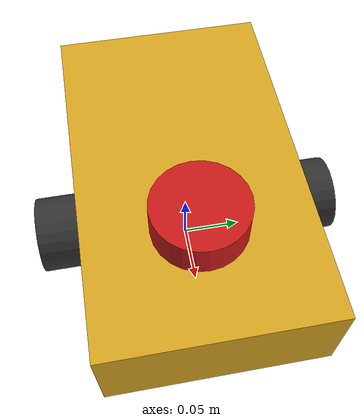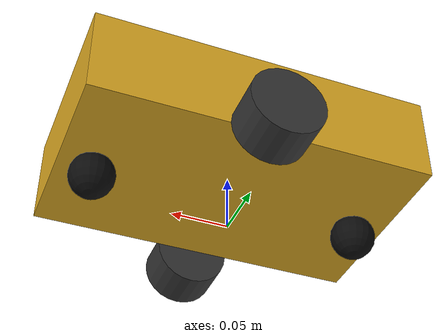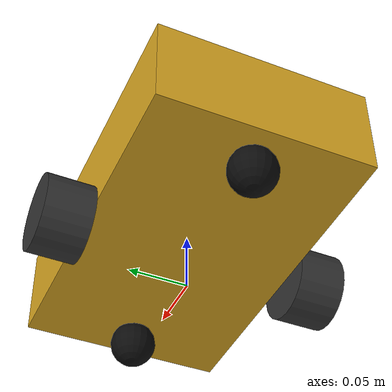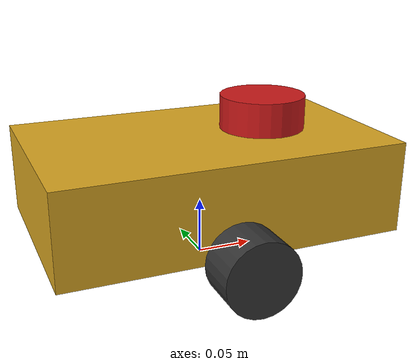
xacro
<?xml version="1.0"?>
<robot xmlns:xacro="http://www.ros.org/wiki/xacro" name="yp100_tank">

  <!-- Core Physical & Kinematic Model -->
  <xacro:include filename="yp100_core.xacro"/>

  <!-- Gazebo Differential Drive Plugin -->
  <xacro:include filename="gazebo_control.xacro"/>

  <!-- RPLIDAR A2M12 Laser Scanner -->
  <xacro:include filename="lidar.xacro"/>

  <!-- 6-DOF IMU Sensor -->
  <xacro:include filename="imu.xacro"/>

</robot>

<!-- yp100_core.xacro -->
<robot xmlns:xacro="http://www.ros.org/wiki/xacro">

  <!-- Dimensions and Properties for YP100 Tank Chassis -->
  <xacro:property name="chassis_length" value="0.300"/>
  <xacro:property name="chassis_width" value="0.180"/>
  <xacro:property name="chassis_height" value="0.080"/>
  <xacro:property name="chassis_mass" value="2.0"/>

  <xacro:property name="wheel_radius" value="0.0325"/>
  <xacro:property name="wheel_width" value="0.040"/>
  <xacro:property name="wheel_mass" value="0.2"/>
  <xacro:property name="wheel_separation" value="0.220"/>

  <xacro:property name="caster_radius" value="0.020"/>
  <xacro:property name="caster_mass" value="0.1"/>

  <!-- Colors -->
  <material name="yp100_gold">
    <color rgba="0.85 0.65 0.13 1.0"/>
  </material>

  <material name="dark_grey">
    <color rgba="0.2 0.2 0.2 1.0"/>
  </material>

  <material name="black">
    <color rgba="0.05 0.05 0.05 1.0"/>
  </material>

  <material name="red">
    <color rgba="0.8 0.1 0.1 1.0"/>
  </material>

  <!-- Base Footprint (Ground Projection) -->
  <link name="base_footprint"/>

  <!-- Base Joint -->
  <joint name="base_joint" type="fixed">
    <parent link="base_footprint"/>
    <child link="base_link"/>
    <origin xyz="0 0 ${wheel_radius}" rpy="0 0 0"/>
  </joint>

  <!-- Base Link (Chassis) -->
  <link name="base_link">
    <visual>
      <origin xyz="0 0 ${chassis_height/2}" rpy="0 0 0"/>
      <geometry>
        <box size="${chassis_length} ${chassis_width} ${chassis_height}"/>
      </geometry>
      <material name="yp100_gold"/>
    </visual>
    <collision>
      <origin xyz="0 0 ${chassis_height/2}" rpy="0 0 0"/>
      <geometry>
        <box size="${chassis_length} ${chassis_width} ${chassis_height}"/>
      </geometry>
    </collision>
    <inertial>
      <origin xyz="0 0 ${chassis_height/2}" rpy="0 0 0"/>
      <mass value="${chassis_mass}"/>
      <inertia
        ixx="${(1/12) * chassis_mass * (chassis_width*chassis_width + chassis_height*chassis_height)}"
        ixy="0.0"
        ixz="0.0"
        iyy="${(1/12) * chassis_mass * (chassis_length*chassis_length + chassis_height*chassis_height)}"
        iyz="0.0"
        izz="${(1/12) * chassis_mass * (chassis_length*chassis_length + chassis_width*chassis_width)}"/>
    </inertial>
  </link>

  <gazebo reference="base_link">
    <material>Gazebo/Gold</material>
  </gazebo>

  <!-- Left Drive Wheel -->
  <joint name="left_wheel_joint" type="continuous">
    <parent link="base_link"/>
    <child link="left_wheel"/>
    <origin xyz="0 ${wheel_separation/2} 0" rpy="-${pi/2} 0 0"/>
    <axis xyz="0 0 1"/>
  </joint>

  <link name="left_wheel">
    <visual>
      <geometry>
        <cylinder radius="${wheel_radius}" length="${wheel_width}"/>
      </geometry>
      <material name="dark_grey"/>
    </visual>
    <collision>
      <geometry>
        <cylinder radius="${wheel_radius}" length="${wheel_width}"/>
      </geometry>
    </collision>
    <inertial>
      <mass value="${wheel_mass}"/>
      <inertia
        ixx="${(1/12) * wheel_mass * (3*wheel_radius*wheel_radius + wheel_width*wheel_width)}"
        ixy="0.0"
        ixz="0.0"
        iyy="${(1/12) * wheel_mass * (3*wheel_radius*wheel_radius + wheel_width*wheel_width)}"
        iyz="0.0"
        izz="${(1/2) * wheel_mass * wheel_radius * wheel_radius}"/>
    </inertial>
  </link>

  <gazebo reference="left_wheel">
    <material>Gazebo/DarkGrey</material>
    <mu1 value="1.0"/>
    <mu2 value="1.0"/>
    <kp value="1000000.0"/>
    <kd value="100.0"/>
  </gazebo>

  <!-- Right Drive Wheel -->
  <joint name="right_wheel_joint" type="continuous">
    <parent link="base_link"/>
    <child link="right_wheel"/>
    <origin xyz="0 -${wheel_separation/2} 0" rpy="${pi/2} 0 0"/>
    <axis xyz="0 0 -1"/>
  </joint>

  <link name="right_wheel">
    <visual>
      <geometry>
        <cylinder radius="${wheel_radius}" length="${wheel_width}"/>
      </geometry>
      <material name="dark_grey"/>
    </visual>
    <collision>
      <geometry>
        <cylinder radius="${wheel_radius}" length="${wheel_width}"/>
      </geometry>
    </collision>
    <inertial>
      <mass value="${wheel_mass}"/>
      <inertia
        ixx="${(1/12) * wheel_mass * (3*wheel_radius*wheel_radius + wheel_width*wheel_width)}"
        ixy="0.0"
        ixz="0.0"
        iyy="${(1/12) * wheel_mass * (3*wheel_radius*wheel_radius + wheel_width*wheel_width)}"
        iyz="0.0"
        izz="${(1/2) * wheel_mass * wheel_radius * wheel_radius}"/>
    </inertial>
  </link>

  <gazebo reference="right_wheel">
    <material>Gazebo/DarkGrey</material>
    <mu1 value="1.0"/>
    <mu2 value="1.0"/>
    <kp value="1000000.0"/>
    <kd value="100.0"/>
  </gazebo>

  <!-- Front Support/Caster Wheel (Frictionless for pitch stability in Gazebo) -->
  <joint name="front_caster_joint" type="fixed">
    <parent link="base_link"/>
    <child link="front_caster"/>
    <origin xyz="${chassis_length/2 - 0.03} 0 ${caster_radius - wheel_radius}" rpy="0 0 0"/>
  </joint>

  <link name="front_caster">
    <visual>
      <geometry>
        <sphere radius="${caster_radius}"/>
      </geometry>
      <material name="black"/>
    </visual>
    <collision>
      <geometry>
        <sphere radius="${caster_radius}"/>
      </geometry>
    </collision>
    <inertial>
      <mass value="${caster_mass}"/>
      <inertia
        ixx="${(2/5) * caster_mass * caster_radius * caster_radius}" ixy="0.0" ixz="0.0"
        iyy="${(2/5) * caster_mass * caster_radius * caster_radius}" iyz="0.0"
        izz="${(2/5) * caster_mass * caster_radius * caster_radius}"/>
    </inertial>
  </link>

  <gazebo reference="front_caster">
    <material>Gazebo/Black</material>
    <mu1 value="0.001"/>
    <mu2 value="0.001"/>
  </gazebo>

  <!-- Rear Support/Caster Wheel (Frictionless for pitch stability in Gazebo) -->
  <joint name="rear_caster_joint" type="fixed">
    <parent link="base_link"/>
    <child link="rear_caster"/>
    <origin xyz="-${chassis_length/2 - 0.03} 0 ${caster_radius - wheel_radius}" rpy="0 0 0"/>
  </joint>

  <link name="rear_caster">
    <visual>
      <geometry>
        <sphere radius="${caster_radius}"/>
      </geometry>
      <material name="black"/>
    </visual>
    <collision>
      <geometry>
        <sphere radius="${caster_radius}"/>
      </geometry>
    </collision>
    <inertial>
      <mass value="${caster_mass}"/>
      <inertia
        ixx="${(2/5) * caster_mass * caster_radius * caster_radius}" ixy="0.0" ixz="0.0"
        iyy="${(2/5) * caster_mass * caster_radius * caster_radius}" iyz="0.0"
        izz="${(2/5) * caster_mass * caster_radius * caster_radius}"/>
    </inertial>
  </link>

  <gazebo reference="rear_caster">
    <material>Gazebo/Black</material>
    <mu1 value="0.001"/>
    <mu2 value="0.001"/>
  </gazebo>

</robot>

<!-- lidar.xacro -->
<robot xmlns:xacro="http://www.ros.org/wiki/xacro">

  <!-- RPLIDAR A2M12 Mount on Top of Chassis -->
  <joint name="laser_joint" type="fixed">
    <parent link="base_link"/>
    <child link="laser_frame"/>
    <origin xyz="0.06 0.0 0.09" rpy="0 0 0"/>
  </joint>

  <link name="laser_frame">
    <visual>
      <origin xyz="0 0 0" rpy="0 0 0"/>
      <geometry>
        <cylinder radius="0.038" length="0.040"/>
      </geometry>
      <material name="red"/>
    </visual>
    <collision>
      <origin xyz="0 0 0" rpy="0 0 0"/>
      <geometry>
        <cylinder radius="0.038" length="0.040"/>
      </geometry>
    </collision>
    <inertial>
      <mass value="0.19"/>
      <inertia
        ixx="0.0001" ixy="0.0" ixz="0.0"
        iyy="0.0001" iyz="0.0"
        izz="0.0001"/>
    </inertial>
  </link>

  <gazebo reference="laser_frame">
    <material>Gazebo/Red</material>
    <sensor name="rplidar_a2m12" type="ray">
      <pose>0 0 0 0 0 0</pose>
      <visualize>false</visualize>
      <update_rate>10</update_rate>
      <ray>
        <scan>
          <horizontal>
            <samples>360</samples>
            <resolution>1</resolution>
            <min_angle>-3.14159265</min_angle>
            <max_angle>3.14159265</max_angle>
          </horizontal>
        </scan>
        <range>
          <min>0.15</min>
          <max>12.0</max>
          <resolution>0.01</resolution>
        </range>
        <noise>
          <type>gaussian</type>
          <mean>0.0</mean>
          <stddev>0.01</stddev>
        </noise>
      </ray>
      <plugin name="laser_controller" filename="libgazebo_ros_ray_sensor.so">
        <ros>
          <remapping>~/out:=scan</remapping>
        </ros>
        <output_type>sensor_msgs/LaserScan</output_type>
        <frame_name>laser_frame</frame_name>
      </plugin>
    </sensor>
  </gazebo>

</robot>

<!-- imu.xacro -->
<robot xmlns:xacro="http://www.ros.org/wiki/xacro">

  <!-- 6-DOF IMU Sensor (BNO055 / MPU6050) at Robot Center -->
  <joint name="imu_joint" type="fixed">
    <parent link="base_link"/>
    <child link="imu_link"/>
    <origin xyz="0 0 0.04" rpy="0 0 0"/>
  </joint>

  <link name="imu_link">
    <visual>
      <geometry>
        <box size="0.02 0.02 0.005"/>
      </geometry>
      <material name="black"/>
    </visual>
    <collision>
      <geometry>
        <box size="0.02 0.02 0.005"/>
      </geometry>
    </collision>
    <inertial>
      <mass value="0.02"/>
      <inertia
        ixx="0.000001" ixy="0" ixz="0"
        iyy="0.000001" iyz="0"
        izz="0.000001"/>
    </inertial>
  </link>

  <gazebo reference="imu_link">
    <material>Gazebo/Black</material>
    <sensor name="imu_sensor" type="imu">
      <always_on>true</always_on>
      <update_rate>100</update_rate>
      <visualize>false</visualize>
      <imu>
        <angular_velocity>
          <x>
            <noise type="gaussian">
              <mean>0.0</mean>
              <stddev>2e-4</stddev>
            </noise>
          </x>
          <y>
            <noise type="gaussian">
              <mean>0.0</mean>
              <stddev>2e-4</stddev>
            </noise>
          </y>
          <z>
            <noise type="gaussian">
              <mean>0.0</mean>
              <stddev>2e-4</stddev>
            </noise>
          </z>
        </angular_velocity>
        <linear_acceleration>
          <x>
            <noise type="gaussian">
              <mean>0.0</mean>
              <stddev>1.7e-2</stddev>
            </noise>
          </x>
          <y>
            <noise type="gaussian">
              <mean>0.0</mean>
              <stddev>1.7e-2</stddev>
            </noise>
          </y>
          <z>
            <noise type="gaussian">
              <mean>0.0</mean>
              <stddev>1.7e-2</stddev>
            </noise>
          </z>
        </linear_acceleration>
      </imu>
      <plugin name="imu_controller" filename="libgazebo_ros_imu_sensor.so">
        <ros>
          <remapping>~/out:=imu/data</remapping>
        </ros>
        <initial_orientation_as_reference>false</initial_orientation_as_reference>
        <frame_name>imu_link</frame_name>
      </plugin>
    </sensor>
  </gazebo>

</robot>
